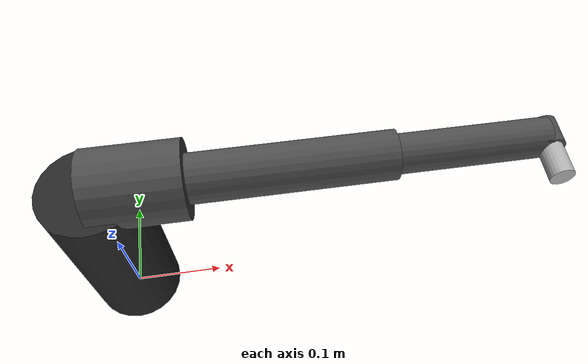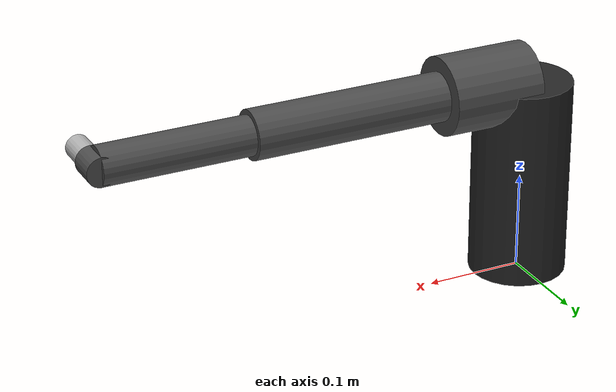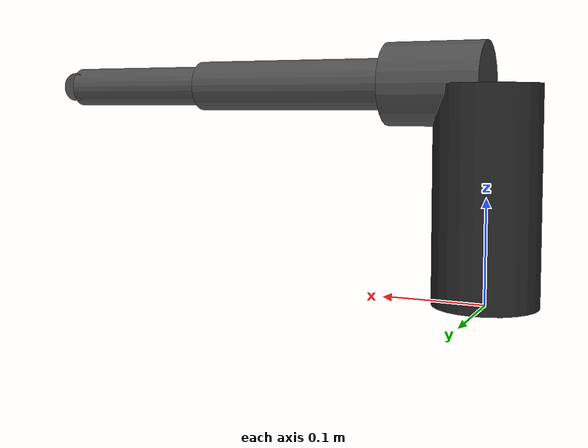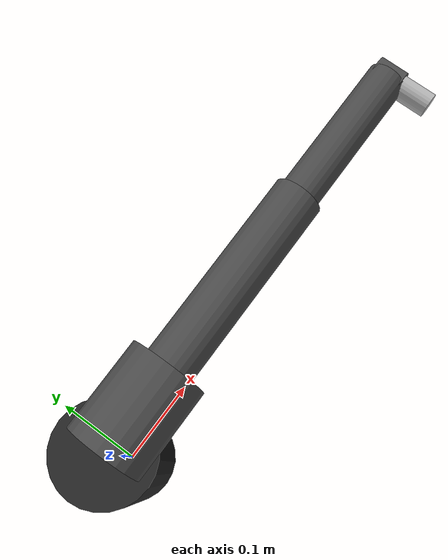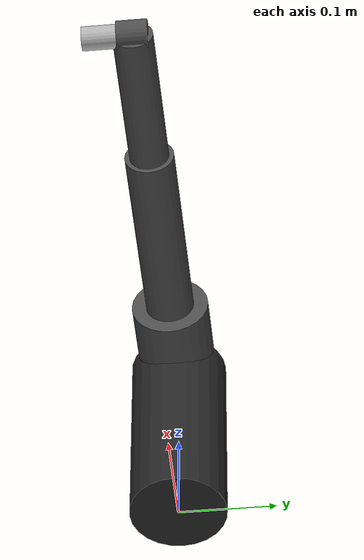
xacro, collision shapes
<?xml version="1.0"?>
<robot name="dorna_2" xmlns:xacro="http://ros.org/wiki/xacro">

  <xacro:include filename="$(find dorna2_description)/urdf/materials.xacro"/>

  <xacro:arg name="parent" default="world"/>
  <xacro:arg name="model" default="dorna_2"/>
  <xacro:arg name="use_mesh" default="true"/>

  <xacro:property name="PI" value="3.14159265358979"/>
  <xacro:property name="mesh_dir" value="package://dorna2_description/meshes/dorna_2"/>
  <xacro:property name="use_mesh" value="$(arg use_mesh)"/>
  <xacro:property name="model" value="$(arg model)"/>

  <!-- DH parameters (meters). d1 differs between 2 and 2S. -->
  <xacro:property name="d1_2" value="0.2064"/>
  <xacro:property name="d1_2s" value="0.21847"/>
  <xacro:property name="d1" value="${d1_2s if model == 'dorna_2s' else d1_2}"/>

  <xacro:property name="a2" value="0.09548"/>
  <xacro:property name="a3" value="0.2032"/>
  <xacro:property name="a4" value="0.1524"/>
  <xacro:property name="d5" value="0.04892"/>

  <!-- Meshes are pre-transformed to each link's local frame.
       No CAD-frame alignment needed; visual origins are identity. -->

  <xacro:macro name="default_inertia" params="mass">
    <inertial>
      <mass value="${mass}"/>
      <inertia ixx="0.001" ixy="0.0" ixz="0.0" iyy="0.001" iyz="0.0" izz="0.001"/>
    </inertial>
  </xacro:macro>

  <link name="$(arg parent)"/>

  <!-- Base link -->
  <link name="base_link">
    <xacro:if value="${use_mesh}">
      <visual>
        <origin xyz="0 0 0" rpy="0 0 0"/>
        <geometry><mesh filename="${mesh_dir}/base.stl" scale="0.001 0.001 0.001"/></geometry>
        <material name="dorna_black"/>
      </visual>
    </xacro:if>
    <xacro:unless value="${use_mesh}">
      <visual>
        <origin xyz="0 0 0" rpy="0 0 0"/>
        <geometry><cylinder length="${d1}" radius="0.05"/></geometry>
        <material name="dorna_black"/>
      </visual>
    </xacro:unless>
    <collision>
      <origin xyz="0 0 ${d1/2}" rpy="0 0 0"/>
      <geometry>
        <cylinder length="${d1}" radius="0.05"/>
      </geometry>
    </collision>
    <xacro:default_inertia mass="1.5"/>
  </link>

  <joint name="base_fixed" type="fixed">
    <parent link="$(arg parent)"/>
    <child link="base_link"/>
    <origin xyz="0 0 0" rpy="0 0 0"/>
  </joint>

  <!-- Joint 0: base rotation -->
  <link name="link0">
    <xacro:if value="${use_mesh}">
      <visual>
        <origin xyz="0 0 0" rpy="0 0 0"/>
        <geometry><mesh filename="${mesh_dir}/link0.stl" scale="0.001 0.001 0.001"/></geometry>
        <material name="dorna_dark_grey"/>
      </visual>
    </xacro:if>
    <xacro:unless value="${use_mesh}">
      <visual>
        <origin xyz="0 0 0" rpy="0 0 0"/>
        <geometry><cylinder length="0.095" radius="0.04"/></geometry>
        <material name="dorna_dark_grey"/>
      </visual>
    </xacro:unless>
    <collision>
      <origin xyz="${a2/2} 0 0" rpy="0 ${PI/2} 0"/>
      <geometry>
        <cylinder length="${a2}" radius="0.04"/>
      </geometry>
    </collision>
    <xacro:default_inertia mass="1.2"/>
  </link>

  <joint name="joint0" type="revolute">
    <parent link="base_link"/>
    <child link="link0"/>
    <origin xyz="0 0 ${d1}" rpy="0 0 0"/>
    <axis xyz="0 0 1"/>
    <limit lower="${-160*PI/180}" upper="${180*PI/180}" velocity="${225*PI/180}" effort="50"/>
  </joint>

  <!-- Joint 1: shoulder pitch. link1 carries merged arm geometry (link1-link4 CAD assemblies). -->
  <link name="link1">
    <xacro:if value="${use_mesh}">
      <visual>
        <origin xyz="0 0 0" rpy="0 0 0"/>
        <geometry><mesh filename="${mesh_dir}/link1.stl" scale="0.001 0.001 0.001"/></geometry>
        <material name="dorna_dark_grey"/>
      </visual>
    </xacro:if>
    <xacro:unless value="${use_mesh}">
      <visual>
        <origin xyz="0 0 0" rpy="0 0 0"/>
        <geometry><cylinder length="0.203" radius="0.025"/></geometry>
        <material name="dorna_dark_grey"/>
      </visual>
    </xacro:unless>
    <collision>
      <origin xyz="${a3/2} 0 0" rpy="0 ${PI/2} 0"/>
      <geometry>
        <cylinder length="${a3}" radius="0.025"/>
      </geometry>
    </collision>
    <xacro:default_inertia mass="0.8"/>
  </link>

  <joint name="joint1" type="revolute">
    <parent link="link0"/>
    <child link="link1"/>
    <origin xyz="${a2} 0 0" rpy="${PI/2} 0 0"/>
    <axis xyz="0 0 1"/>
    <limit lower="${(-91 if model == 'dorna_2s' else -90)*PI/180}" upper="${(181 if model == 'dorna_2s' else 180)*PI/180}" velocity="${225*PI/180}" effort="50"/>
  </joint>

  <!-- Joint 2: placeholder mesh (geometry merged into link1) -->
  <link name="link2">
    <xacro:if value="${use_mesh}">
      <visual>
        <origin xyz="0 0 0" rpy="0 0 0"/>
        <geometry><mesh filename="${mesh_dir}/link2.stl" scale="0.001 0.001 0.001"/></geometry>
        <material name="dorna_dark_grey"/>
      </visual>
    </xacro:if>
    <xacro:unless value="${use_mesh}">
      <visual>
        <origin xyz="0 0 0" rpy="0 0 0"/>
        <geometry><cylinder length="0.152" radius="0.02"/></geometry>
        <material name="dorna_dark_grey"/>
      </visual>
    </xacro:unless>
    <collision>
      <origin xyz="${a4/2} 0 0" rpy="0 ${PI/2} 0"/>
      <geometry>
        <cylinder length="${a4}" radius="0.02"/>
      </geometry>
    </collision>
    <xacro:default_inertia mass="0.6"/>
  </link>

  <joint name="joint2" type="revolute">
    <parent link="link1"/>
    <child link="link2"/>
    <origin xyz="${a3} 0 0" rpy="0 0 0"/>
    <axis xyz="0 0 1"/>
    <limit lower="${-142*PI/180}" upper="${142*PI/180}" velocity="${240*PI/180}" effort="30"/>
  </joint>

  <!-- Joint 3: placeholder mesh -->
  <link name="link3">
    <xacro:if value="${use_mesh}">
      <visual>
        <origin xyz="0 0 0" rpy="0 0 0"/>
        <geometry><mesh filename="${mesh_dir}/link3.stl" scale="0.001 0.001 0.001"/></geometry>
        <material name="dorna_dark_grey"/>
      </visual>
    </xacro:if>
    <xacro:unless value="${use_mesh}">
      <visual>
        <origin xyz="0 0 0" rpy="0 0 0"/>
        <geometry><cylinder length="0.049" radius="0.015"/></geometry>
        <material name="dorna_dark_grey"/>
      </visual>
    </xacro:unless>
    <collision>
      <origin xyz="0 0 0" rpy="0 0 0"/>
      <geometry>
        <cylinder length="0.03" radius="0.015"/>
      </geometry>
    </collision>
    <xacro:default_inertia mass="0.2"/>
  </link>

  <joint name="joint3" type="revolute">
    <parent link="link2"/>
    <child link="link3"/>
    <origin xyz="${a4} 0 0" rpy="0 0 0"/>
    <axis xyz="0 0 1"/>
    <limit lower="${-135*PI/180}" upper="${135*PI/180}" velocity="${1125*PI/180}" effort="10"/>
  </joint>

  <!-- Joint 4: wrist roll (continuous), placeholder mesh -->
  <link name="link4">
    <xacro:if value="${use_mesh}">
      <visual>
        <origin xyz="0 0 0" rpy="0 0 0"/>
        <geometry><mesh filename="${mesh_dir}/link4.stl" scale="0.001 0.001 0.001"/></geometry>
        <material name="dorna_light_grey"/>
      </visual>
    </xacro:if>
    <xacro:unless value="${use_mesh}">
      <visual>
        <origin xyz="0 0 0" rpy="0 0 0"/>
        <geometry><cylinder length="0.049" radius="0.012"/></geometry>
        <material name="dorna_light_grey"/>
      </visual>
    </xacro:unless>
    <collision>
      <origin xyz="0 0 ${d5/2}" rpy="0 0 0"/>
      <geometry>
        <cylinder length="${d5}" radius="0.012"/>
      </geometry>
    </collision>
    <xacro:default_inertia mass="0.1"/>
  </link>

  <joint name="joint4" type="continuous">
    <parent link="link3"/>
    <child link="link4"/>
    <origin xyz="0 0 0" rpy="0 0 ${PI/2}"/>
    <axis xyz="1 0 0"/>
    <limit effort="10" velocity="${1125*PI/180}"/>
  </joint>

  <!-- Flange -->
  <link name="flange">
    <xacro:default_inertia mass="0.05"/>
  </link>

  <joint name="flange_fixed" type="fixed">
    <parent link="link4"/>
    <child link="flange"/>
    <origin xyz="0 0 ${d5}" rpy="0 0 0"/>
  </joint>

  <!-- TCP -->
  <link name="tcp"/>

  <joint name="tcp_fixed" type="fixed">
    <parent link="flange"/>
    <child link="tcp"/>
    <origin xyz="0 0 0" rpy="0 0 0"/>
  </joint>

</robot>

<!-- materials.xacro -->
<robot xmlns:xacro="http://ros.org/wiki/xacro">
  <material name="dorna_black">
    <color rgba="0.15 0.15 0.15 1.0"/>
  </material>
  <material name="dorna_dark_grey">
    <color rgba="0.3 0.3 0.3 1.0"/>
  </material>
  <material name="dorna_light_grey">
    <color rgba="0.7 0.7 0.7 1.0"/>
  </material>
  <material name="dorna_blue">
    <color rgba="0.2 0.4 0.8 1.0"/>
  </material>
  <material name="dorna_orange">
    <color rgba="0.9 0.5 0.1 1.0"/>
  </material>
  <material name="dorna_red">
    <color rgba="0.8 0.1 0.1 1.0"/>
  </material>
</robot>
